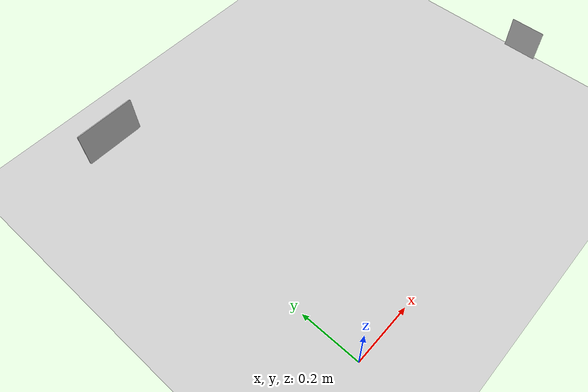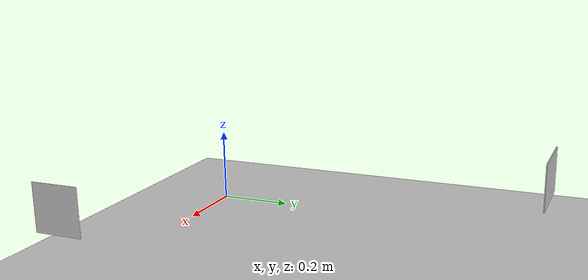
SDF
<sdf version='1.6'>
  <world name='default'>
    <light name='sun' type='directional'>
      <cast_shadows>true</cast_shadows>
      <pose>0 0 10 0 0 0</pose>
      <diffuse>0.8 0.8 0.8 1</diffuse>
      <specular>0.2 0.2 0.2 1</specular>
      <attenuation>
        <range>1000</range>
        <constant>0.9</constant>
        <linear>0.01</linear>
        <quadratic>0.001</quadratic>
      </attenuation>
      <direction>-0.5 0.1 -0.9</direction>
    </light>

    <model name='ground_plane'>
      <static>true</static>
      <link name='link'>
        <collision name='collision'>
          <geometry>
            <plane>
              <normal>0 0 1</normal>
              <size>100 100</size>
            </plane>
          </geometry>
        </collision>
        <visual name='visual'>
          <geometry>
            <plane>
              <normal>0 0 1</normal>
              <size>100 100</size>
            </plane>
          </geometry>
          <material>
            <ambient>0.8 0.8 0.8 1</ambient>
            <diffuse>0.8 0.8 0.8 1</diffuse>
            <specular>0.8 0.8 0.8 1</specular>
          </material>
        </visual>
      </link>
    </model>

    <model name="checkerboard" >
      <pose>0 1.3 0.3 0 1.5708 -1.5708</pose>
      <include>
        <uri>model://checkerboard</uri>
      </include>
    </model>

    <model name="apriltag" >
      <pose>1.0 0.2 0.3 0 1.5708 0</pose>
      <include>
        <uri>model://Apriltag36_11_00000</uri>
      </include>
    </model>
  </world>
</sdf>

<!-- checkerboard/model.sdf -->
<sdf version="1.4">
  <model name='checkerboard'>
    <static>1</static>
    <link name='link_checkerboard'>
      <pose>0 0 0 0 -0 0</pose>
      <collision name='collision'>
        <geometry>
          <mesh>
            <uri>model://checkerboard/checkerboard_20mm_7x4.dae</uri>
            <scale>1 1 1</scale>
          </mesh>
        </geometry>
        <surface>
          <friction>
            <ode>
              <mu>100</mu>
              <mu2>50</mu2>
            </ode>
          </friction>
          <bounce>
            <restitution_coefficient>0</restitution_coefficient>
            <threshold>1e+06</threshold>
          </bounce>
          <contact>
            <collide_without_contact>0</collide_without_contact>
            <collide_without_contact_bitmask>1</collide_without_contact_bitmask>
            <ode>
              <soft_cfm>0</soft_cfm>
              <soft_erp>0.2</soft_erp>
              <kp>1e+13</kp>
              <kd>1</kd>
              <max_vel>0.01</max_vel>
              <min_depth>0</min_depth>
            </ode>
            <bullet>
              <split_impulse>1</split_impulse>
              <split_impulse_penetration_threshold>-0.01</split_impulse_penetration_threshold>
              <soft_cfm>0</soft_cfm>
              <soft_erp>0.2</soft_erp>
              <kp>1e+13</kp>
              <kd>1</kd>
            </bullet>
          </contact>
        </surface>
        <max_contacts>10</max_contacts>
        <laser_retro>0</laser_retro>
      </collision>
      <visual name='visual'>
        <cast_shadows>1</cast_shadows>
        <transparency>0</transparency>
        <geometry>
          <mesh>
            <uri>model://checkerboard/checkerboard_20mm_7x4.dae</uri>
            <scale>1 1 1</scale>
          </mesh>
        </geometry>
      </visual>
      <velocity_decay>
        <linear>0</linear>
        <angular>0</angular>
      </velocity_decay>
      <self_collide>0</self_collide>
      <kinematic>0</kinematic>
      <gravity>0</gravity>
    </link>
  </model>
</sdf>

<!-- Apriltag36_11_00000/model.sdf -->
<sdf version='1.6'>
  <model name='Apriltag36_11_00000'>
    <link name="link">
      <inertial>
        <pose>0 0 0 0 0 0</pose>
        <mass>0.5</mass>
        <inertia>
          <ixx>0.0001</ixx>
          <ixy>0</ixy>
          <ixz>0</ixz>
          <iyy>0.0001</iyy>
          <iyz>0</iyz>
          <izz>0.0001</izz>
        </inertia>
      </inertial>
      <collision name="collision">
        <pose>0 0 0 0 0 0</pose>
        <geometry>
          <mesh>
            <uri>model://Apriltag36_11_00000/meshes/tag36_11_00000.dae</uri>
          </mesh>
        </geometry>
        <surface>
          <friction>
            <ode>
              <mu>1.0</mu>
              <mu2>1.0</mu2>
            </ode>
          </friction>
          <contact>
            <ode>
              <kp>10000000.0</kp>
              <kd>1.0</kd>
              <min_depth>0.001</min_depth>
              <max_vel>0.1</max_vel>
            </ode>
          </contact>
        </surface>
      </collision>
      <visual name="visual">
        <pose>0 0 0 0 0 0</pose>
        <geometry>
          <mesh>
            <uri>model://Apriltag36_11_00000/meshes/tag36_11_00000.dae</uri>
          </mesh>
        </geometry>
      </visual>
    </link>
  </model>
</sdf>
